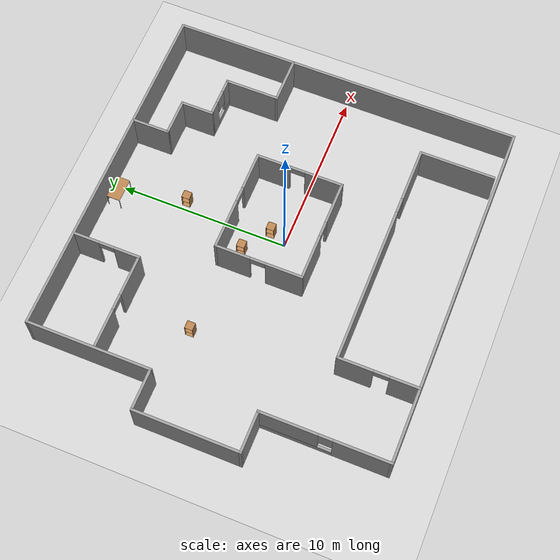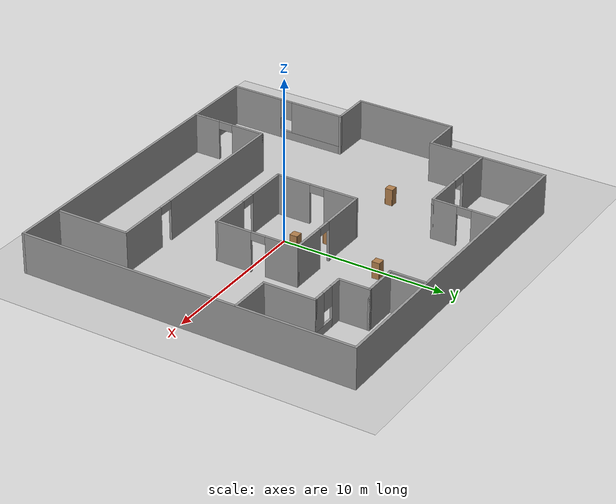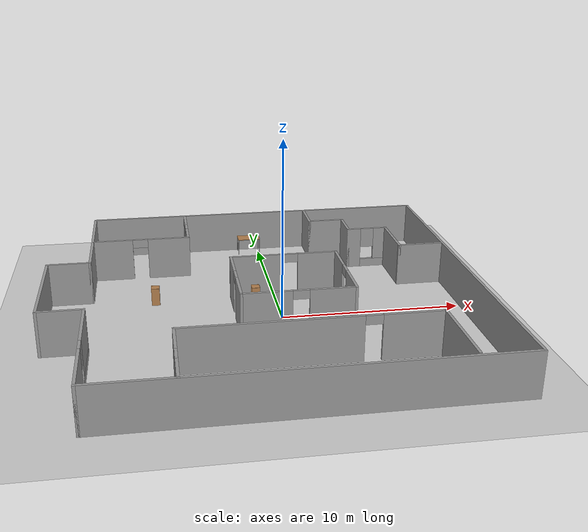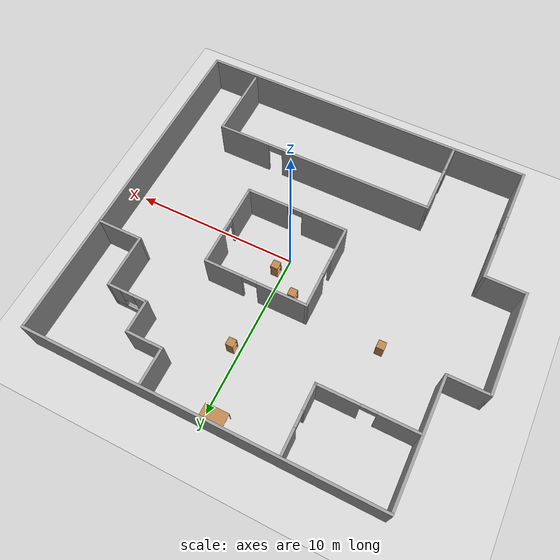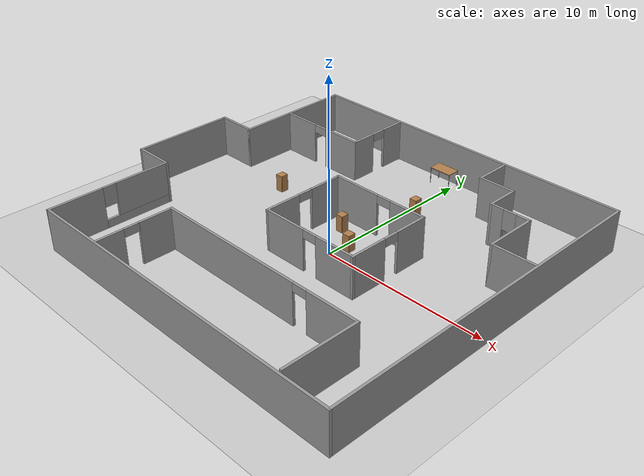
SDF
<sdf version="1.6">
 <world name="default">
  <model name="ground_plane">
   <static>1</static>
   <link name="link">
    <collision name="collision">
     <geometry><plane><normal>0 0 1</normal><size>100 100</size></plane></geometry>
     <surface><friction><ode><mu>100</mu><mu2>50</mu2></ode></friction></surface>
    </collision>
    <visual name="visual">
     <cast_shadows>0</cast_shadows>
     <geometry><plane><normal>0 0 1</normal><size>100 100</size></plane></geometry>
     <material>
      <script><uri>file://media/materials/scripts/gazebo.material</uri><name>Gazebo/Grey</name></script>
     </material>
    </visual>
   </link>
  </model>
  <model name="myworld3">
   <pose>-1.23585 0.3208 0 0 -0 0</pose>
   <link name="Wall_12">
    <collision name="Wall_12_Collision">
     <geometry><box><size>20.75 0.15 2.5</size></box></geometry>
     <pose>0 0 1.25 0 -0 0</pose>
    </collision>
    <visual name="Wall_12_Visual">
     <pose>0 0 1.25 0 -0 0</pose>
     <geometry><box><size>20.75 0.15 2.5</size></box></geometry>
     <material>
      <script><uri>file://media/materials/scripts/gazebo.material</uri><name>Gazebo/Grey</name></script>
      <ambient>1 1 1 1</ambient>
     </material>
    </visual>
    <pose>1.175 -10.35 0 0 -0 0</pose>
   </link>
   <link name="Wall_14">
    <pose>-9.125 -6.675 0 0 -0 1.5708</pose>
    <visual name="Wall_14_Visual_0">
     <pose>-2.10785 0 1.25 0 -0 0</pose>
     <geometry><box><size>3.2843 0.15 2.5</size></box></geometry>
     <material>
      <script><uri>file://media/materials/scripts/gazebo.material</uri><name>Gazebo/Grey</name></script>
      <ambient>1 1 1 1</ambient>
     </material>
    </visual>
    <collision name="Wall_14_Collision_0">
     <geometry><box><size>3.2843 0.15 2.5</size></box></geometry>
     <pose>-2.10785 0 1.25 0 -0 0</pose>
    </collision>
    <visual name="Wall_14_Visual_1">
     <pose>1.64215 0 0.25 0 -0 0</pose>
     <geometry><box><size>4.2157 0.15 0.5</size></box></geometry>
     <material>
      <script><uri>file://media/materials/scripts/gazebo.material</uri><name>Gazebo/Grey</name></script>
      <ambient>1 1 1 1</ambient>
     </material>
    </visual>
    <collision name="Wall_14_Collision_1">
     <geometry><box><size>4.2157 0.15 0.5</size></box></geometry>
     <pose>1.64215 0 0.25 0 -0 0</pose>
    </collision>
    <visual name="Wall_14_Visual_2">
     <pose>2.04215 0 1.5 0 -0 0</pose>
     <geometry><box><size>3.4157 0.15 2</size></box></geometry>
     <material>
      <script><uri>file://media/materials/scripts/gazebo.material</uri><name>Gazebo/Grey</name></script>
      <ambient>1 1 1 1</ambient>
     </material>
    </visual>
    <collision name="Wall_14_Collision_2">
     <geometry><box><size>3.4157 0.15 2</size></box></geometry>
     <pose>2.04215 0 1.5 0 -0 0</pose>
    </collision>
    <visual name="Wall_14_Visual_3">
     <pose>-0.065701 0 1.9 0 -0 0</pose>
     <geometry><box><size>0.8 0.15 1.2</size></box></geometry>
     <material>
      <script><uri>file://media/materials/scripts/gazebo.material</uri><name>Gazebo/Grey</name></script>
      <ambient>1 1 1 1</ambient>
     </material>
    </visual>
    <collision name="Wall_14_Collision_3">
     <geometry><box><size>0.8 0.15 1.2</size></box></geometry>
     <pose>-0.065701 0 1.9 0 -0 0</pose>
    </collision>
   </link>
   <link name="Wall_15">
    <collision name="Wall_15_Collision">
     <geometry><box><size>2.5 0.15 2.5</size></box></geometry>
     <pose>0 0 1.25 0 -0 0</pose>
    </collision>
    <visual name="Wall_15_Visual">
     <pose>0 0 1.25 0 -0 0</pose>
     <geometry><box><size>2.5 0.15 2.5</size></box></geometry>
     <material>
      <script><uri>file://media/materials/scripts/gazebo.material</uri><name>Gazebo/Grey</name></script>
      <ambient>1 1 1 1</ambient>
     </material>
    </visual>
    <pose>-10.3 -3 0 0 -0 3.14159</pose>
   </link>
   <link name="Wall_16">
    <collision name="Wall_16_Collision">
     <geometry><box><size>6.25 0.15 2.5</size></box></geometry>
     <pose>0 0 1.25 0 -0 0</pose>
    </collision>
    <visual name="Wall_16_Visual">
     <pose>0 0 1.25 0 -0 0</pose>
     <geometry><box><size>6.25 0.15 2.5</size></box></geometry>
     <material>
      <script><uri>file://media/materials/scripts/gazebo.material</uri><name>Gazebo/Grey</name></script>
      <ambient>1 1 1 1</ambient>
     </material>
    </visual>
    <pose>-11.475 0.05 0 0 -0 1.5708</pose>
   </link>
   <link name="Wall_17">
    <collision name="Wall_17_Collision">
     <geometry><box><size>2.5 0.15 2.5</size></box></geometry>
     <pose>0 0 1.25 0 -0 0</pose>
    </collision>
    <visual name="Wall_17_Visual">
     <pose>0 0 1.25 0 -0 0</pose>
     <geometry><box><size>2.5 0.15 2.5</size></box></geometry>
     <material>
      <script><uri>file://media/materials/scripts/gazebo.material</uri><name>Gazebo/Grey</name></script>
      <ambient>1 1 1 1</ambient>
     </material>
    </visual>
    <pose>-10.3 3.1 0 0 -0 0</pose>
   </link>
   <link name="Wall_18">
    <collision name="Wall_18_Collision">
     <geometry><box><size>7.25 0.15 2.5</size></box></geometry>
     <pose>0 0 1.25 0 -0 0</pose>
    </collision>
    <visual name="Wall_18_Visual">
     <pose>0 0 1.25 0 -0 0</pose>
     <geometry><box><size>7.25 0.15 2.5</size></box></geometry>
     <material>
      <script><uri>file://media/materials/scripts/gazebo.material</uri><name>Gazebo/Grey</name></script>
      <ambient>1 1 1 1</ambient>
     </material>
    </visual>
    <pose>-9.125 6.65 0 0 -0 1.5708</pose>
   </link>
   <link name="Wall_21">
    <pose>-6.25324 6.38746 0 0 -0 0</pose>
    <visual name="Wall_21_Visual_0">
     <pose>-1.69779 0 1.25 0 -0 0</pose>
     <geometry><box><size>2.35441 0.15 2.5</size></box></geometry>
     <material>
      <script><uri>file://media/materials/scripts/gazebo.material</uri><name>Gazebo/Grey</name></script>
      <ambient>1 1 1 1</ambient>
     </material>
    </visual>
    <collision name="Wall_21_Collision_0">
     <geometry><box><size>2.35441 0.15 2.5</size></box></geometry>
     <pose>-1.69779 0 1.25 0 -0 0</pose>
    </collision>
    <visual name="Wall_21_Visual_1">
     <pose>1.62721 0 1.25 0 -0 0</pose>
     <geometry><box><size>2.49559 0.15 2.5</size></box></geometry>
     <material>
      <script><uri>file://media/materials/scripts/gazebo.material</uri><name>Gazebo/Grey</name></script>
      <ambient>1 1 1 1</ambient>
     </material>
    </visual>
    <collision name="Wall_21_Collision_1">
     <geometry><box><size>2.49559 0.15 2.5</size></box></geometry>
     <pose>1.62721 0 1.25 0 -0 0</pose>
    </collision>
    <visual name="Wall_21_Visual_2">
     <pose>-0.070589 0 2.25 0 -0 0</pose>
     <geometry><box><size>0.9 0.15 0.5</size></box></geometry>
     <material>
      <script><uri>file://media/materials/scripts/gazebo.material</uri><name>Gazebo/Grey</name></script>
      <ambient>1 1 1 1</ambient>
     </material>
    </visual>
    <collision name="Wall_21_Collision_2">
     <geometry><box><size>0.9 0.15 0.5</size></box></geometry>
     <pose>-0.070589 0 2.25 0 -0 0</pose>
    </collision>
   </link>
   <link name="Wall_22">
    <pose>-3.45324 8.31246 0 0 -0 1.5708</pose>
    <visual name="Wall_22_Visual_0">
     <pose>-1.21601 0 1.25 0 -0 0</pose>
     <geometry><box><size>1.56797 0.15 2.5</size></box></geometry>
     <material>
      <script><uri>file://media/materials/scripts/gazebo.material</uri><name>Gazebo/Grey</name></script>
      <ambient>1 1 1 1</ambient>
     </material>
    </visual>
    <collision name="Wall_22_Collision_0">
     <geometry><box><size>1.56797 0.15 2.5</size></box></geometry>
     <pose>-1.21601 0 1.25 0 -0 0</pose>
    </collision>
    <visual name="Wall_22_Visual_1">
     <pose>1.23399 0 1.25 0 -0 0</pose>
     <geometry><box><size>1.53203 0.15 2.5</size></box></geometry>
     <material>
      <script><uri>file://media/materials/scripts/gazebo.material</uri><name>Gazebo/Grey</name></script>
      <ambient>1 1 1 1</ambient>
     </material>
    </visual>
    <collision name="Wall_22_Collision_1">
     <geometry><box><size>1.53203 0.15 2.5</size></box></geometry>
     <pose>1.23399 0 1.25 0 -0 0</pose>
    </collision>
    <visual name="Wall_22_Visual_2">
     <pose>0.017971 0 2.25 0 -0 0</pose>
     <geometry><box><size>0.9 0.15 0.5</size></box></geometry>
     <material>
      <script><uri>file://media/materials/scripts/gazebo.material</uri><name>Gazebo/Grey</name></script>
      <ambient>1 1 1 1</ambient>
     </material>
    </visual>
    <collision name="Wall_22_Collision_2">
     <geometry><box><size>0.9 0.15 0.5</size></box></geometry>
     <pose>0.017971 0 2.25 0 -0 0</pose>
    </collision>
   </link>
   <link name="Wall_24">
    <pose>-1.2351 0.229083 0 0 0 -1.5708</pose>
    <visual name="Wall_24_Visual_0">
     <pose>-1.56011 0 1.25 0 -0 0</pose>
     <geometry><box><size>2.12979 0.15 2.5</size></box></geometry>
     <material>
      <script><uri>file://media/materials/scripts/gazebo.material</uri><name>Gazebo/Grey</name></script>
      <ambient>1 1 1 1</ambient>
     </material>
    </visual>
    <collision name="Wall_24_Collision_0">
     <geometry><box><size>2.12979 0.15 2.5</size></box></geometry>
     <pose>-1.56011 0 1.25 0 -0 0</pose>
    </collision>
    <visual name="Wall_24_Visual_1">
     <pose>1.5149 0 1.25 0 -0 0</pose>
     <geometry><box><size>2.22021 0.15 2.5</size></box></geometry>
     <material>
      <script><uri>file://media/materials/scripts/gazebo.material</uri><name>Gazebo/Grey</name></script>
      <ambient>1 1 1 1</ambient>
     </material>
    </visual>
    <collision name="Wall_24_Collision_1">
     <geometry><box><size>2.22021 0.15 2.5</size></box></geometry>
     <pose>1.5149 0 1.25 0 -0 0</pose>
    </collision>
    <visual name="Wall_24_Visual_2">
     <pose>-0.04521 0 2.25 0 -0 0</pose>
     <geometry><box><size>0.9 0.15 0.5</size></box></geometry>
     <material>
      <script><uri>file://media/materials/scripts/gazebo.material</uri><name>Gazebo/Grey</name></script>
      <ambient>1 1 1 1</ambient>
     </material>
    </visual>
    <collision name="Wall_24_Collision_2">
     <geometry><box><size>0.9 0.15 0.5</size></box></geometry>
     <pose>-0.04521 0 2.25 0 -0 0</pose>
    </collision>
   </link>
   <link name="Wall_25">
    <pose>1.8149 -2.32092 0 0 -0 0</pose>
    <visual name="Wall_25_Visual_0">
     <pose>-1.74065 0 1.25 0 -0 0</pose>
     <geometry><box><size>2.76871 0.15 2.5</size></box></geometry>
     <material>
      <script><uri>file://media/materials/scripts/gazebo.material</uri><name>Gazebo/Grey</name></script>
      <ambient>1 1 1 1</ambient>
     </material>
    </visual>
    <collision name="Wall_25_Collision_0">
     <geometry><box><size>2.76871 0.15 2.5</size></box></geometry>
     <pose>-1.74065 0 1.25 0 -0 0</pose>
    </collision>
    <visual name="Wall_25_Visual_1">
     <pose>1.83435 0 1.25 0 -0 0</pose>
     <geometry><box><size>2.58129 0.15 2.5</size></box></geometry>
     <material>
      <script><uri>file://media/materials/scripts/gazebo.material</uri><name>Gazebo/Grey</name></script>
      <ambient>1 1 1 1</ambient>
     </material>
    </visual>
    <collision name="Wall_25_Collision_1">
     <geometry><box><size>2.58129 0.15 2.5</size></box></geometry>
     <pose>1.83435 0 1.25 0 -0 0</pose>
    </collision>
    <visual name="Wall_25_Visual_2">
     <pose>0.093708 0 2.25 0 -0 0</pose>
     <geometry><box><size>0.9 0.15 0.5</size></box></geometry>
     <material>
      <script><uri>file://media/materials/scripts/gazebo.material</uri><name>Gazebo/Grey</name></script>
      <ambient>1 1 1 1</ambient>
     </material>
    </visual>
    <collision name="Wall_25_Collision_2">
     <geometry><box><size>0.9 0.15 0.5</size></box></geometry>
     <pose>0.093708 0 2.25 0 -0 0</pose>
    </collision>
   </link>
   <link name="Wall_28">
    <pose>1.8149 2.77908 0 0 -0 0</pose>
    <visual name="Wall_28_Visual_0">
     <pose>-1.60377 0 1.25 0 -0 0</pose>
     <geometry><box><size>3.04246 0.15 2.5</size></box></geometry>
     <material>
      <script><uri>file://media/materials/scripts/gazebo.material</uri><name>Gazebo/Grey</name></script>
      <ambient>1 1 1 1</ambient>
     </material>
    </visual>
    <collision name="Wall_28_Collision_0">
     <geometry><box><size>3.04246 0.15 2.5</size></box></geometry>
     <pose>-1.60377 0 1.25 0 -0 0</pose>
    </collision>
    <visual name="Wall_28_Visual_1">
     <pose>1.97123 0 1.25 0 -0 0</pose>
     <geometry><box><size>2.30754 0.15 2.5</size></box></geometry>
     <material>
      <script><uri>file://media/materials/scripts/gazebo.material</uri><name>Gazebo/Grey</name></script>
      <ambient>1 1 1 1</ambient>
     </material>
    </visual>
    <collision name="Wall_28_Collision_1">
     <geometry><box><size>2.30754 0.15 2.5</size></box></geometry>
     <pose>1.97123 0 1.25 0 -0 0</pose>
    </collision>
    <visual name="Wall_28_Visual_2">
     <pose>0.367465 0 2.25 0 -0 0</pose>
     <geometry><box><size>0.9 0.15 0.5</size></box></geometry>
     <material>
      <script><uri>file://media/materials/scripts/gazebo.material</uri><name>Gazebo/Grey</name></script>
      <ambient>1 1 1 1</ambient>
     </material>
    </visual>
    <collision name="Wall_28_Collision_2">
     <geometry><box><size>0.9 0.15 0.5</size></box></geometry>
     <pose>0.367465 0 2.25 0 -0 0</pose>
    </collision>
   </link>
   <link name="Wall_29">
    <pose>4.8649 0.229083 0 0 0 -1.5708</pose>
    <visual name="Wall_29_Visual_0">
     <pose>-1.59052 0 1.25 0 -0 0</pose>
     <geometry><box><size>2.06895 0.15 2.5</size></box></geometry>
     <material>
      <script><uri>file://media/materials/scripts/gazebo.material</uri><name>Gazebo/Grey</name></script>
      <ambient>1 1 1 1</ambient>
     </material>
    </visual>
    <collision name="Wall_29_Collision_0">
     <geometry><box><size>2.06895 0.15 2.5</size></box></geometry>
     <pose>-1.59052 0 1.25 0 -0 0</pose>
    </collision>
    <visual name="Wall_29_Visual_1">
     <pose>1.48448 0 1.25 0 -0 0</pose>
     <geometry><box><size>2.28105 0.15 2.5</size></box></geometry>
     <material>
      <script><uri>file://media/materials/scripts/gazebo.material</uri><name>Gazebo/Grey</name></script>
      <ambient>1 1 1 1</ambient>
     </material>
    </visual>
    <collision name="Wall_29_Collision_1">
     <geometry><box><size>2.28105 0.15 2.5</size></box></geometry>
     <pose>1.48448 0 1.25 0 -0 0</pose>
    </collision>
    <visual name="Wall_29_Visual_2">
     <pose>-0.106045 0 2.25 0 -0 0</pose>
     <geometry><box><size>0.9 0.15 0.5</size></box></geometry>
     <material>
      <script><uri>file://media/materials/scripts/gazebo.material</uri><name>Gazebo/Grey</name></script>
      <ambient>1 1 1 1</ambient>
     </material>
    </visual>
    <collision name="Wall_29_Collision_2">
     <geometry><box><size>0.9 0.15 0.5</size></box></geometry>
     <pose>-0.106045 0 2.25 0 -0 0</pose>
    </collision>
   </link>
   <link name="Wall_31">
    <collision name="Wall_31_Collision">
     <geometry><box><size>2.25 0.15 2.5</size></box></geometry>
     <pose>0 0 1.25 0 -0 0</pose>
    </collision>
    <visual name="Wall_31_Visual">
     <pose>0 0 1.25 0 -0 0</pose>
     <geometry><box><size>2.25 0.15 2.5</size></box></geometry>
     <material>
      <script><uri>file://media/materials/scripts/gazebo.material</uri><name>Gazebo/Grey</name></script>
      <ambient>1 1 1 1</ambient>
     </material>
    </visual>
    <pose>4.37483 9.23343 0 0 0 -1.5708</pose>
   </link>
   <link name="Wall_32">
    <collision name="Wall_32_Collision">
     <geometry><box><size>2.25 0.15 2.5</size></box></geometry>
     <pose>0 0 1.25 0 -0 0</pose>
    </collision>
    <visual name="Wall_32_Visual">
     <pose>0 0 1.25 0 -0 0</pose>
     <geometry><box><size>2.25 0.15 2.5</size></box></geometry>
     <material>
      <script><uri>file://media/materials/scripts/gazebo.material</uri><name>Gazebo/Grey</name></script>
      <ambient>1 1 1 1</ambient>
     </material>
    </visual>
    <pose>5.42483 8.18343 0 0 -0 0</pose>
   </link>
   <link name="Wall_33">
    <collision name="Wall_33_Collision">
     <geometry><box><size>2 0.15 2.5</size></box></geometry>
     <pose>0 0 1.25 0 -0 0</pose>
    </collision>
    <visual name="Wall_33_Visual">
     <pose>0 0 1.25 0 -0 0</pose>
     <geometry><box><size>2 0.15 2.5</size></box></geometry>
     <material>
      <script><uri>file://media/materials/scripts/gazebo.material</uri><name>Gazebo/Grey</name></script>
      <ambient>1 1 1 1</ambient>
     </material>
    </visual>
    <pose>6.47483 7.25843 0 0 0 -1.5708</pose>
   </link>
   <link name="Wall_34">
    <pose>7.64983 6.33343 0 0 -0 0</pose>
    <visual name="Wall_34_Visual_0">
     <pose>-0.820227 0 1.25 0 -0 0</pose>
     <geometry><box><size>0.859546 0.15 2.5</size></box></geometry>
     <material>
      <script><uri>file://media/materials/scripts/gazebo.material</uri><name>Gazebo/Grey</name></script>
      <ambient>1 1 1 1</ambient>
     </material>
    </visual>
    <collision name="Wall_34_Collision_0">
     <geometry><box><size>0.859546 0.15 2.5</size></box></geometry>
     <pose>-0.820227 0 1.25 0 -0 0</pose>
    </collision>
    <visual name="Wall_34_Visual_1">
     <pose>0.429773 0 0.25 0 -0 0</pose>
     <geometry><box><size>1.64045 0.15 0.5</size></box></geometry>
     <material>
      <script><uri>file://media/materials/scripts/gazebo.material</uri><name>Gazebo/Grey</name></script>
      <ambient>1 1 1 1</ambient>
     </material>
    </visual>
    <collision name="Wall_34_Collision_1">
     <geometry><box><size>1.64045 0.15 0.5</size></box></geometry>
     <pose>0.429773 0 0.25 0 -0 0</pose>
    </collision>
    <visual name="Wall_34_Visual_2">
     <pose>0.829773 0 1.5 0 -0 0</pose>
     <geometry><box><size>0.840454 0.15 2</size></box></geometry>
     <material>
      <script><uri>file://media/materials/scripts/gazebo.material</uri><name>Gazebo/Grey</name></script>
      <ambient>1 1 1 1</ambient>
     </material>
    </visual>
    <collision name="Wall_34_Collision_2">
     <geometry><box><size>0.840454 0.15 2</size></box></geometry>
     <pose>0.829773 0 1.5 0 -0 0</pose>
    </collision>
    <visual name="Wall_34_Visual_3">
     <pose>0.009546 0 1.9 0 -0 0</pose>
     <geometry><box><size>0.8 0.15 1.2</size></box></geometry>
     <material>
      <script><uri>file://media/materials/scripts/gazebo.material</uri><name>Gazebo/Grey</name></script>
      <ambient>1 1 1 1</ambient>
     </material>
    </visual>
    <collision name="Wall_34_Collision_3">
     <geometry><box><size>0.8 0.15 1.2</size></box></geometry>
     <pose>0.009546 0 1.9 0 -0 0</pose>
    </collision>
   </link>
   <link name="Wall_35">
    <collision name="Wall_35_Collision">
     <geometry><box><size>3.25 0.15 2.5</size></box></geometry>
     <pose>0 0 1.25 0 -0 0</pose>
    </collision>
    <visual name="Wall_35_Visual">
     <pose>0 0 1.25 0 -0 0</pose>
     <geometry><box><size>3.25 0.15 2.5</size></box></geometry>
     <material>
      <script><uri>file://media/materials/scripts/gazebo.material</uri><name>Gazebo/Grey</name></script>
      <ambient>1 1 1 1</ambient>
     </material>
    </visual>
    <pose>8.82483 4.78343 0 0 0 -1.5708</pose>
   </link>
   <link name="Wall_36">
    <collision name="Wall_36_Collision">
     <geometry><box><size>2.75 0.15 2.5</size></box></geometry>
     <pose>0 0 1.25 0 -0 0</pose>
    </collision>
    <visual name="Wall_36_Visual">
     <pose>0 0 1.25 0 -0 0</pose>
     <geometry><box><size>2.75 0.15 2.5</size></box></geometry>
     <material>
      <script><uri>file://media/materials/scripts/gazebo.material</uri><name>Gazebo/Grey</name></script>
      <ambient>1 1 1 1</ambient>
     </material>
    </visual>
    <pose>10.1248 3.23343 0 0 -0 0</pose>
   </link>
   <link name="Wall_38">
    <pose>-4.83115 -8.04908 0 0 -0 1.5708</pose>
    <visual name="Wall_38_Visual_0">
     <pose>-1.49849 0 1.25 0 -0 0</pose>
     <geometry><box><size>1.75302 0.15 2.5</size></box></geometry>
     <material>
      <script><uri>file://media/materials/scripts/gazebo.material</uri><name>Gazebo/Grey</name></script>
      <ambient>1 1 1 1</ambient>
     </material>
    </visual>
    <collision name="Wall_38_Collision_0">
     <geometry><box><size>1.75302 0.15 2.5</size></box></geometry>
     <pose>-1.49849 0 1.25 0 -0 0</pose>
    </collision>
    <visual name="Wall_38_Visual_1">
     <pose>1.32651 0 1.25 0 -0 0</pose>
     <geometry><box><size>2.09698 0.15 2.5</size></box></geometry>
     <material>
      <script><uri>file://media/materials/scripts/gazebo.material</uri><name>Gazebo/Grey</name></script>
      <ambient>1 1 1 1</ambient>
     </material>
    </visual>
    <collision name="Wall_38_Collision_1">
     <geometry><box><size>2.09698 0.15 2.5</size></box></geometry>
     <pose>1.32651 0 1.25 0 -0 0</pose>
    </collision>
    <visual name="Wall_38_Visual_2">
     <pose>-0.171984 0 2.25 0 -0 0</pose>
     <geometry><box><size>0.9 0.15 0.5</size></box></geometry>
     <material>
      <script><uri>file://media/materials/scripts/gazebo.material</uri><name>Gazebo/Grey</name></script>
      <ambient>1 1 1 1</ambient>
     </material>
    </visual>
    <collision name="Wall_38_Collision_2">
     <geometry><box><size>0.9 0.15 0.5</size></box></geometry>
     <pose>-0.171984 0 2.25 0 -0 0</pose>
    </collision>
   </link>
   <link name="Wall_39">
    <pose>1.84385 -5.74908 0 0 -0 0</pose>
    <visual name="Wall_39_Visual_0">
     <pose>-2.08007 0 1.25 0 -0 0</pose>
     <geometry><box><size>9.33986 0.15 2.5</size></box></geometry>
     <material>
      <script><uri>file://media/materials/scripts/gazebo.material</uri><name>Gazebo/Grey</name></script>
      <ambient>1 1 1 1</ambient>
     </material>
    </visual>
    <collision name="Wall_39_Collision_0">
     <geometry><box><size>9.33986 0.15 2.5</size></box></geometry>
     <pose>-2.08007 0 1.25 0 -0 0</pose>
    </collision>
    <visual name="Wall_39_Visual_1">
     <pose>5.11993 0 1.25 0 -0 0</pose>
     <geometry><box><size>3.26015 0.15 2.5</size></box></geometry>
     <material>
      <script><uri>file://media/materials/scripts/gazebo.material</uri><name>Gazebo/Grey</name></script>
      <ambient>1 1 1 1</ambient>
     </material>
    </visual>
    <collision name="Wall_39_Collision_1">
     <geometry><box><size>3.26015 0.15 2.5</size></box></geometry>
     <pose>5.11993 0 1.25 0 -0 0</pose>
    </collision>
    <visual name="Wall_39_Visual_2">
     <pose>3.03986 0 2.25 0 -0 0</pose>
     <geometry><box><size>0.9 0.15 0.5</size></box></geometry>
     <material>
      <script><uri>file://media/materials/scripts/gazebo.material</uri><name>Gazebo/Grey</name></script>
      <ambient>1 1 1 1</ambient>
     </material>
    </visual>
    <collision name="Wall_39_Collision_2">
     <geometry><box><size>0.9 0.15 0.5</size></box></geometry>
     <pose>3.03986 0 2.25 0 -0 0</pose>
    </collision>
   </link>
   <link name="Wall_40">
    <collision name="Wall_40_Collision">
     <geometry><box><size>4.5 0.15 2.5</size></box></geometry>
     <pose>0 0 1.25 0 -0 0</pose>
    </collision>
    <visual name="Wall_40_Visual">
     <pose>0 0 1.25 0 -0 0</pose>
     <geometry><box><size>4.5 0.15 2.5</size></box></geometry>
     <material>
      <script><uri>file://media/materials/scripts/gazebo.material</uri><name>Gazebo/Grey</name></script>
      <ambient>1 1 1 1</ambient>
     </material>
    </visual>
    <pose>8.51885 -7.92408 0 0 0 -1.5708</pose>
   </link>
   <link name="Wall_7">
    <collision name="Wall_7_Collision">
     <geometry><box><size>20.75 0.15 2.5</size></box></geometry>
     <pose>0 0 1.25 0 -0 0</pose>
    </collision>
    <visual name="Wall_7_Visual">
     <pose>0 0 1.25 0 -0 0</pose>
     <geometry><box><size>20.75 0.15 2.5</size></box></geometry>
     <material>
      <script><uri>file://media/materials/scripts/gazebo.material</uri><name>Gazebo/Grey</name></script>
      <ambient>1 1 1 1</ambient>
     </material>
    </visual>
    <pose>1.175 10.35 0 0 -0 0</pose>
   </link>
   <link name="Wall_8">
    <collision name="Wall_8_Collision">
     <geometry><box><size>20.75 0.15 2.5</size></box></geometry>
     <pose>0 0 1.25 0 -0 0</pose>
    </collision>
    <visual name="Wall_8_Visual">
     <pose>0 0 1.25 0 -0 0</pose>
     <geometry><box><size>20.75 0.15 2.5</size></box></geometry>
     <material>
      <script><uri>file://media/materials/scripts/gazebo.material</uri><name>Gazebo/Grey</name></script>
      <ambient>1 1 1 1</ambient>
     </material>
    </visual>
    <pose>11.475 0.05 0 0 0 -1.5708</pose>
   </link>
   <static>1</static>
  </model>
  <model name="cabinet">
   <static>1</static>
   <link name="cabinet_bottom_plate">
    <inertial>
     <pose>0 0 -1 0 -0 0</pose>
     <inertia><ixx>2.05</ixx><ixy>0</ixy><ixz>0</ixz><iyy>2.05</iyy><iyz>0</iyz><izz>2.05</izz></inertia>
     <mass>25</mass>
    </inertial>
    <collision name="cabinet_bottom_plate_geom">
     <pose>0 0 0.01 0 -0 0</pose>
     <geometry><box><size>0.45 0.45 0.02</size></box></geometry>
    </collision>
    <visual name="cabinet_bottom_plate_geom_visual">
     <pose>0 0 0.01 0 -0 0</pose>
     <geometry><box><size>0.45 0.45 0.02</size></box></geometry>
     <material>
      <script><uri>file://media/materials/scripts/gazebo.material</uri><name>Gazebo/Wood</name></script>
     </material>
    </visual>
    <collision name="cabinet_bottom_plate_geom_cabinet_back_plate">
     <pose>0.235 0 0.51 0 -0 0</pose>
     <geometry><box><size>0.02 0.45 1.02</size></box></geometry>
    </collision>
    <visual name="cabinet_bottom_plate_geom_cabinet_back_plate_visual">
     <pose>0.235 0 0.51 0 -0 0</pose>
     <geometry><box><size>0.02 0.45 1.02</size></box></geometry>
     <material>
      <script><uri>file://media/materials/scripts/gazebo.material</uri><name>Gazebo/Wood</name></script>
     </material>
    </visual>
    <collision name="cabinet_bottom_plate_geom_cabinet_left_plate">
     <pose>0 0.235 0.51 0 -0 0</pose>
     <geometry><box><size>0.45 0.02 1.02</size></box></geometry>
    </collision>
    <visual name="cabinet_bottom_plate_geom_cabinet_left_plate_visual">
     <pose>0 0.235 0.51 0 -0 0</pose>
     <geometry><box><size>0.45 0.02 1.02</size></box></geometry>
     <material>
      <script><uri>file://media/materials/scripts/gazebo.material</uri><name>Gazebo/Wood</name></script>
     </material>
    </visual>
    <collision name="cabinet_bottom_plate_geom_cabinet_middle_plate">
     <pose>0 0 0.51 0 -0 0</pose>
     <geometry><box><size>0.45 0.45 0.02</size></box></geometry>
    </collision>
    <visual name="cabinet_bottom_plate_geom_cabinet_middle_plate_visual">
     <pose>0 0 0.51 0 -0 0</pose>
     <geometry><box><size>0.45 0.45 0.02</size></box></geometry>
     <material>
      <script><uri>file://media/materials/scripts/gazebo.material</uri><name>Gazebo/Wood</name></script>
     </material>
    </visual>
    <collision name="cabinet_bottom_plate_geom_cabinet_right_plate">
     <pose>0 -0.235 0.51 0 -0 0</pose>
     <geometry><box><size>0.45 0.02 1.02</size></box></geometry>
    </collision>
    <visual name="cabinet_bottom_plate_geom_cabinet_right_plate_visual">
     <pose>0 -0.235 0.51 0 -0 0</pose>
     <geometry><box><size>0.45 0.02 1.02</size></box></geometry>
     <material>
      <script><uri>file://media/materials/scripts/gazebo.material</uri><name>Gazebo/Wood</name></script>
     </material>
    </visual>
    <collision name="cabinet_bottom_plate_geom_cabinet_top_plate">
     <pose>0 0 1.01 0 -0 0</pose>
     <geometry><box><size>0.45 0.45 0.02</size></box></geometry>
    </collision>
    <visual name="cabinet_bottom_plate_geom_cabinet_top_plate_visual">
     <pose>0 0 1.01 0 -0 0</pose>
     <geometry><box><size>0.45 0.45 0.02</size></box></geometry>
     <material>
      <script><uri>file://media/materials/scripts/gazebo.material</uri><name>Gazebo/Wood</name></script>
     </material>
    </visual>
   </link>
   <pose>-6.82497 2.81774 0 0 -0 0</pose>
  </model>
  <model name="table">
   <static>0</static>
   <link name="link">
    <collision name="surface">
     <pose>0 0 1 0 -0 0</pose>
     <geometry><box><size>1.5 0.8 0.03</size></box></geometry>
     <surface><friction><ode><mu>0.6</mu><mu2>0.6</mu2></ode></friction></surface>
    </collision>
    <visual name="visual1">
     <pose>0 0 1 0 -0 0</pose>
     <geometry><box><size>1.4 0.8 0.04</size></box></geometry>
     <material>
      <script><uri>file://media/materials/scripts/gazebo.material</uri><name>Gazebo/Wood</name></script>
     </material>
    </visual>
    <collision name="front_left_leg">
     <pose>0.68 0.38 0.5 0 -0 0</pose>
     <geometry><cylinder><radius>0.02</radius><length>1</length></cylinder></geometry>
    </collision>
    <visual name="front_left_leg">
     <pose>0.68 0.38 0.5 0 -0 0</pose>
     <geometry><cylinder><radius>0.02</radius><length>1</length></cylinder></geometry>
     <material>
      <script><uri>file://media/materials/scripts/gazebo.material</uri><name>Gazebo/Grey</name></script>
     </material>
    </visual>
    <collision name="front_right_leg">
     <pose>0.68 -0.38 0.5 0 -0 0</pose>
     <geometry><cylinder><radius>0.02</radius><length>1</length></cylinder></geometry>
    </collision>
    <visual name="front_right_leg">
     <pose>0.68 -0.38 0.5 0 -0 0</pose>
     <geometry><cylinder><radius>0.02</radius><length>1</length></cylinder></geometry>
     <material>
      <script><uri>file://media/materials/scripts/gazebo.material</uri><name>Gazebo/Grey</name></script>
     </material>
    </visual>
    <collision name="back_right_leg">
     <pose>-0.68 -0.38 0.5 0 -0 0</pose>
     <geometry><cylinder><radius>0.02</radius><length>1</length></cylinder></geometry>
    </collision>
    <visual name="back_right_leg">
     <pose>-0.68 -0.38 0.5 0 -0 0</pose>
     <geometry><cylinder><radius>0.02</radius><length>1</length></cylinder></geometry>
     <material>
      <script><uri>file://media/materials/scripts/gazebo.material</uri><name>Gazebo/Grey</name></script>
     </material>
    </visual>
    <collision name="back_left_leg">
     <pose>-0.68 0.38 0.5 0 -0 0</pose>
     <geometry><cylinder><radius>0.02</radius><length>1</length></cylinder></geometry>
    </collision>
    <visual name="back_left_leg">
     <pose>-0.68 0.38 0.5 0 -0 0</pose>
     <geometry><cylinder><radius>0.02</radius><length>1</length></cylinder></geometry>
     <material>
      <script><uri>file://media/materials/scripts/gazebo.material</uri><name>Gazebo/Grey</name></script>
     </material>
    </visual>
    <inertial>
     <inertia><ixx>1</ixx><ixy>0</ixy><ixz>0</ixz><iyy>1</iyy><iyz>0</iyz><izz>1</izz></inertia>
     <mass>1</mass>
    </inertial>
   </link>
   <pose>-0.603636 10.046 -1e-06 0 1e-06 0</pose>
  </model>
  <model name="cabinet_3">
   <static>1</static>
   <link name="cabinet_bottom_plate">
    <inertial>
     <pose>0 0 -1 0 -0 0</pose>
     <inertia><ixx>2.05</ixx><ixy>0</ixy><ixz>0</ixz><iyy>2.05</iyy><iyz>0</iyz><izz>2.05</izz></inertia>
     <mass>25</mass>
    </inertial>
    <collision name="cabinet_bottom_plate_geom">
     <pose>0 0 0.01 0 -0 0</pose>
     <geometry><box><size>0.45 0.45 0.02</size></box></geometry>
    </collision>
    <visual name="cabinet_bottom_plate_geom_visual">
     <pose>0 0 0.01 0 -0 0</pose>
     <geometry><box><size>0.45 0.45 0.02</size></box></geometry>
     <material>
      <script><uri>file://media/materials/scripts/gazebo.material</uri><name>Gazebo/Wood</name></script>
     </material>
    </visual>
    <collision name="cabinet_bottom_plate_geom_cabinet_back_plate">
     <pose>0.235 0 0.51 0 -0 0</pose>
     <geometry><box><size>0.02 0.45 1.02</size></box></geometry>
    </collision>
    <visual name="cabinet_bottom_plate_geom_cabinet_back_plate_visual">
     <pose>0.235 0 0.51 0 -0 0</pose>
     <geometry><box><size>0.02 0.45 1.02</size></box></geometry>
     <material>
      <script><uri>file://media/materials/scripts/gazebo.material</uri><name>Gazebo/Wood</name></script>
     </material>
    </visual>
    <collision name="cabinet_bottom_plate_geom_cabinet_left_plate">
     <pose>0 0.235 0.51 0 -0 0</pose>
     <geometry><box><size>0.45 0.02 1.02</size></box></geometry>
    </collision>
    <visual name="cabinet_bottom_plate_geom_cabinet_left_plate_visual">
     <pose>0 0.235 0.51 0 -0 0</pose>
     <geometry><box><size>0.45 0.02 1.02</size></box></geometry>
     <material>
      <script><uri>file://media/materials/scripts/gazebo.material</uri><name>Gazebo/Wood</name></script>
     </material>
    </visual>
    <collision name="cabinet_bottom_plate_geom_cabinet_middle_plate">
     <pose>0 0 0.51 0 -0 0</pose>
     <geometry><box><size>0.45 0.45 0.02</size></box></geometry>
    </collision>
    <visual name="cabinet_bottom_plate_geom_cabinet_middle_plate_visual">
     <pose>0 0 0.51 0 -0 0</pose>
     <geometry><box><size>0.45 0.45 0.02</size></box></geometry>
     <material>
      <script><uri>file://media/materials/scripts/gazebo.material</uri><name>Gazebo/Wood</name></script>
     </material>
    </visual>
    <collision name="cabinet_bottom_plate_geom_cabinet_right_plate">
     <pose>0 -0.235 0.51 0 -0 0</pose>
     <geometry><box><size>0.45 0.02 1.02</size></box></geometry>
    </collision>
    <visual name="cabinet_bottom_plate_geom_cabinet_right_plate_visual">
     <pose>0 -0.235 0.51 0 -0 0</pose>
     <geometry><box><size>0.45 0.02 1.02</size></box></geometry>
     <material>
      <script><uri>file://media/materials/scripts/gazebo.material</uri><name>Gazebo/Wood</name></script>
     </material>
    </visual>
    <collision name="cabinet_bottom_plate_geom_cabinet_top_plate">
     <pose>0 0 1.01 0 -0 0</pose>
     <geometry><box><size>0.45 0.45 0.02</size></box></geometry>
    </collision>
    <visual name="cabinet_bottom_plate_geom_cabinet_top_plate_visual">
     <pose>0 0 1.01 0 -0 0</pose>
     <geometry><box><size>0.45 0.45 0.02</size></box></geometry>
     <material>
      <script><uri>file://media/materials/scripts/gazebo.material</uri><name>Gazebo/Wood</name></script>
     </material>
    </visual>
   </link>
   <pose>0.429185 0.991493 0 0 -0 0</pose>
  </model>
  <model name="cabinet_4">
   <static>1</static>
   <link name="cabinet_bottom_plate">
    <inertial>
     <pose>0 0 -1 0 -0 0</pose>
     <inertia><ixx>2.05</ixx><ixy>0</ixy><ixz>0</ixz><iyy>2.05</iyy><iyz>0</iyz><izz>2.05</izz></inertia>
     <mass>25</mass>
    </inertial>
    <collision name="cabinet_bottom_plate_geom">
     <pose>0 0 0.01 0 -0 0</pose>
     <geometry><box><size>0.45 0.45 0.02</size></box></geometry>
    </collision>
    <visual name="cabinet_bottom_plate_geom_visual">
     <pose>0 0 0.01 0 -0 0</pose>
     <geometry><box><size>0.45 0.45 0.02</size></box></geometry>
     <material>
      <script><uri>file://media/materials/scripts/gazebo.material</uri><name>Gazebo/Wood</name></script>
     </material>
    </visual>
    <collision name="cabinet_bottom_plate_geom_cabinet_back_plate">
     <pose>0.235 0 0.51 0 -0 0</pose>
     <geometry><box><size>0.02 0.45 1.02</size></box></geometry>
    </collision>
    <visual name="cabinet_bottom_plate_geom_cabinet_back_plate_visual">
     <pose>0.235 0 0.51 0 -0 0</pose>
     <geometry><box><size>0.02 0.45 1.02</size></box></geometry>
     <material>
      <script><uri>file://media/materials/scripts/gazebo.material</uri><name>Gazebo/Wood</name></script>
     </material>
    </visual>
    <collision name="cabinet_bottom_plate_geom_cabinet_left_plate">
     <pose>0 0.235 0.51 0 -0 0</pose>
     <geometry><box><size>0.45 0.02 1.02</size></box></geometry>
    </collision>
    <visual name="cabinet_bottom_plate_geom_cabinet_left_plate_visual">
     <pose>0 0.235 0.51 0 -0 0</pose>
     <geometry><box><size>0.45 0.02 1.02</size></box></geometry>
     <material>
      <script><uri>file://media/materials/scripts/gazebo.material</uri><name>Gazebo/Wood</name></script>
     </material>
    </visual>
    <collision name="cabinet_bottom_plate_geom_cabinet_middle_plate">
     <pose>0 0 0.51 0 -0 0</pose>
     <geometry><box><size>0.45 0.45 0.02</size></box></geometry>
    </collision>
    <visual name="cabinet_bottom_plate_geom_cabinet_middle_plate_visual">
     <pose>0 0 0.51 0 -0 0</pose>
     <geometry><box><size>0.45 0.45 0.02</size></box></geometry>
     <material>
      <script><uri>file://media/materials/scripts/gazebo.material</uri><name>Gazebo/Wood</name></script>
     </material>
    </visual>
    <collision name="cabinet_bottom_plate_geom_cabinet_right_plate">
     <pose>0 -0.235 0.51 0 -0 0</pose>
     <geometry><box><size>0.45 0.02 1.02</size></box></geometry>
    </collision>
    <visual name="cabinet_bottom_plate_geom_cabinet_right_plate_visual">
     <pose>0 -0.235 0.51 0 -0 0</pose>
     <geometry><box><size>0.45 0.02 1.02</size></box></geometry>
     <material>
      <script><uri>file://media/materials/scripts/gazebo.material</uri><name>Gazebo/Wood</name></script>
     </material>
    </visual>
    <collision name="cabinet_bottom_plate_geom_cabinet_top_plate">
     <pose>0 0 1.01 0 -0 0</pose>
     <geometry><box><size>0.45 0.45 0.02</size></box></geometry>
    </collision>
    <visual name="cabinet_bottom_plate_geom_cabinet_top_plate_visual">
     <pose>0 0 1.01 0 -0 0</pose>
     <geometry><box><size>0.45 0.45 0.02</size></box></geometry>
     <material>
      <script><uri>file://media/materials/scripts/gazebo.material</uri><name>Gazebo/Wood</name></script>
     </material>
    </visual>
   </link>
   <pose>-1.1941 2.12935 0 0 -0 0</pose>
  </model>
  <model name="cabinet_5">
   <static>1</static>
   <link name="cabinet_bottom_plate">
    <inertial>
     <pose>0 0 -1 0 -0 0</pose>
     <inertia><ixx>2.05</ixx><ixy>0</ixy><ixz>0</ixz><iyy>2.05</iyy><iyz>0</iyz><izz>2.05</izz></inertia>
     <mass>25</mass>
    </inertial>
    <collision name="cabinet_bottom_plate_geom">
     <pose>0 0 0.01 0 -0 0</pose>
     <geometry><box><size>0.45 0.45 0.02</size></box></geometry>
    </collision>
    <visual name="cabinet_bottom_plate_geom_visual">
     <pose>0 0 0.01 0 -0 0</pose>
     <geometry><box><size>0.45 0.45 0.02</size></box></geometry>
     <material>
      <script><uri>file://media/materials/scripts/gazebo.material</uri><name>Gazebo/Wood</name></script>
     </material>
    </visual>
    <collision name="cabinet_bottom_plate_geom_cabinet_back_plate">
     <pose>0.235 0 0.51 0 -0 0</pose>
     <geometry><box><size>0.02 0.45 1.02</size></box></geometry>
    </collision>
    <visual name="cabinet_bottom_plate_geom_cabinet_back_plate_visual">
     <pose>0.235 0 0.51 0 -0 0</pose>
     <geometry><box><size>0.02 0.45 1.02</size></box></geometry>
     <material>
      <script><uri>file://media/materials/scripts/gazebo.material</uri><name>Gazebo/Wood</name></script>
     </material>
    </visual>
    <collision name="cabinet_bottom_plate_geom_cabinet_left_plate">
     <pose>0 0.235 0.51 0 -0 0</pose>
     <geometry><box><size>0.45 0.02 1.02</size></box></geometry>
    </collision>
    <visual name="cabinet_bottom_plate_geom_cabinet_left_plate_visual">
     <pose>0 0.235 0.51 0 -0 0</pose>
     <geometry><box><size>0.45 0.02 1.02</size></box></geometry>
     <material>
      <script><uri>file://media/materials/scripts/gazebo.material</uri><name>Gazebo/Wood</name></script>
     </material>
    </visual>
    <collision name="cabinet_bottom_plate_geom_cabinet_middle_plate">
     <pose>0 0 0.51 0 -0 0</pose>
     <geometry><box><size>0.45 0.45 0.02</size></box></geometry>
    </collision>
    <visual name="cabinet_bottom_plate_geom_cabinet_middle_plate_visual">
     <pose>0 0 0.51 0 -0 0</pose>
     <geometry><box><size>0.45 0.45 0.02</size></box></geometry>
     <material>
      <script><uri>file://media/materials/scripts/gazebo.material</uri><name>Gazebo/Wood</name></script>
     </material>
    </visual>
    <collision name="cabinet_bottom_plate_geom_cabinet_right_plate">
     <pose>0 -0.235 0.51 0 -0 0</pose>
     <geometry><box><size>0.45 0.02 1.02</size></box></geometry>
    </collision>
    <visual name="cabinet_bottom_plate_geom_cabinet_right_plate_visual">
     <pose>0 -0.235 0.51 0 -0 0</pose>
     <geometry><box><size>0.45 0.02 1.02</size></box></geometry>
     <material>
      <script><uri>file://media/materials/scripts/gazebo.material</uri><name>Gazebo/Wood</name></script>
     </material>
    </visual>
    <collision name="cabinet_bottom_plate_geom_cabinet_top_plate">
     <pose>0 0 1.01 0 -0 0</pose>
     <geometry><box><size>0.45 0.45 0.02</size></box></geometry>
    </collision>
    <visual name="cabinet_bottom_plate_geom_cabinet_top_plate_visual">
     <pose>0 0 1.01 0 -0 0</pose>
     <geometry><box><size>0.45 0.45 0.02</size></box></geometry>
     <material>
      <script><uri>file://media/materials/scripts/gazebo.material</uri><name>Gazebo/Wood</name></script>
     </material>
    </visual>
   </link>
   <pose>0.481793 6.23071 0 0 -0 0</pose>
  </model>
 </world>
</sdf>
